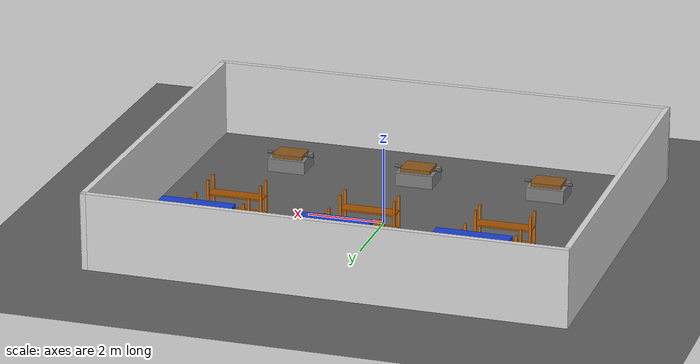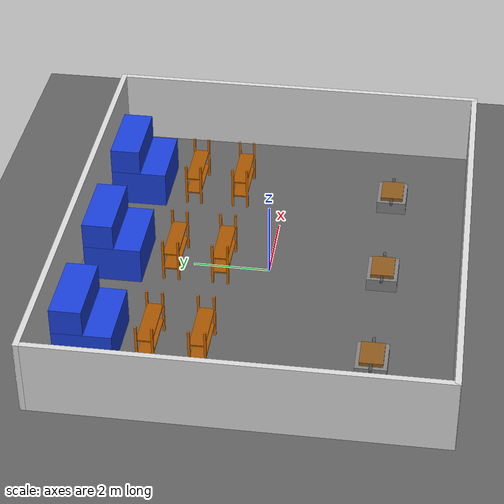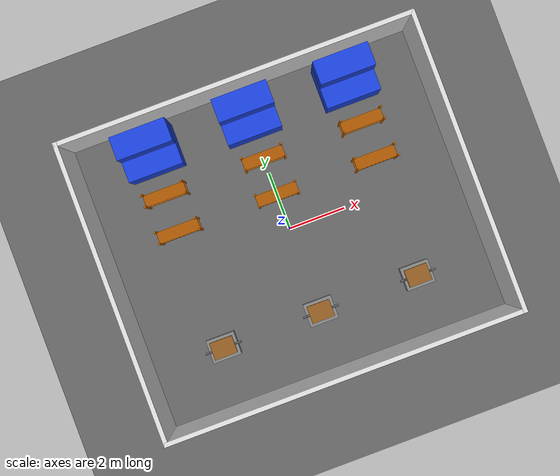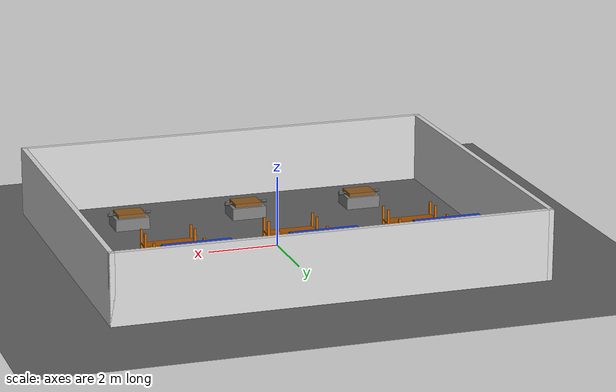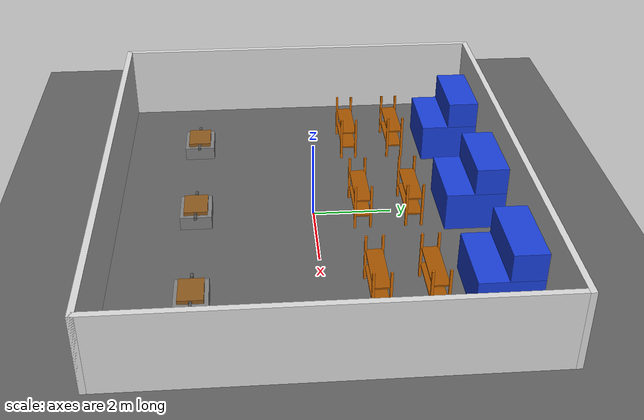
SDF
<?xml version="1.0"?>
<sdf version="1.8">
  <world name="warehouse">

    <!-- Required Ignition Fortress system plugins -->
    <plugin filename="ignition-gazebo-physics-system"
            name="ignition::gazebo::systems::Physics"/>
    <plugin filename="ignition-gazebo-user-commands-system"
            name="ignition::gazebo::systems::UserCommands"/>
    <plugin filename="ignition-gazebo-scene-broadcaster-system"
            name="ignition::gazebo::systems::SceneBroadcaster"/>
    <!-- Sensor system for gpu_lidar (uses Mesa software GL via LIBGL_ALWAYS_SOFTWARE=1) -->
    <plugin filename="ignition-gazebo-sensors-system"
            name="ignition::gazebo::systems::Sensors">
      <render_engine>ogre2</render_engine>
    </plugin>

    <light type="directional" name="sun">
      <cast_shadows>true</cast_shadows>
      <pose>0 0 10 0 0 0</pose>
      <diffuse>0.8 0.8 0.8 1</diffuse>
      <specular>0.2 0.2 0.2 1</specular>
      <direction>-0.5 0.1 -0.9</direction>
    </light>

    <!-- ═══════════════════════════════ GROUND ══════════════════════════════ -->
    <model name="ground_plane">
      <static>true</static>
      <link name="link">
        <collision name="collision">
          <geometry>
            <plane><normal>0 0 1</normal><size>20 20</size></plane>
          </geometry>
        </collision>
        <visual name="visual">
          <geometry>
            <plane><normal>0 0 1</normal><size>20 20</size></plane>
          </geometry>
          <material>
            <ambient>0.33 0.33 0.33 1</ambient>
            <diffuse>0.38 0.38 0.38 1</diffuse>
          </material>
        </visual>
      </link>
    </model>

    <!-- ═══════════════════════════════ WALLS ═══════════════════════════════ -->
    <!-- Interior: 12 m (x) × 10 m (y), centred at origin.                   -->
    <!-- Walls: 0.15 m thick, 2.0 m tall.                                     -->

    <model name="wall_north">
      <static>true</static>
      <pose>0 5.075 1.0 0 0 0</pose>
      <link name="link">
        <collision name="collision">
          <geometry><box><size>12.3 0.15 2.0</size></box></geometry>
        </collision>
        <visual name="visual">
          <geometry><box><size>12.3 0.15 2.0</size></box></geometry>
          <material><ambient>0.75 0.75 0.75 1</ambient><diffuse>0.85 0.85 0.85 1</diffuse></material>
        </visual>
      </link>
    </model>

    <model name="wall_south">
      <static>true</static>
      <pose>0 -5.075 1.0 0 0 0</pose>
      <link name="link">
        <collision name="collision">
          <geometry><box><size>12.3 0.15 2.0</size></box></geometry>
        </collision>
        <visual name="visual">
          <geometry><box><size>12.3 0.15 2.0</size></box></geometry>
          <material><ambient>0.75 0.75 0.75 1</ambient><diffuse>0.85 0.85 0.85 1</diffuse></material>
        </visual>
      </link>
    </model>

    <model name="wall_east">
      <static>true</static>
      <pose>6.075 0 1.0 0 0 0</pose>
      <link name="link">
        <collision name="collision">
          <geometry><box><size>0.15 10.3 2.0</size></box></geometry>
        </collision>
        <visual name="visual">
          <geometry><box><size>0.15 10.3 2.0</size></box></geometry>
          <material><ambient>0.75 0.75 0.75 1</ambient><diffuse>0.85 0.85 0.85 1</diffuse></material>
        </visual>
      </link>
    </model>

    <model name="wall_west">
      <static>true</static>
      <pose>-6.075 0 1.0 0 0 0</pose>
      <link name="link">
        <collision name="collision">
          <geometry><box><size>0.15 10.3 2.0</size></box></geometry>
        </collision>
        <visual name="visual">
          <geometry><box><size>0.15 10.3 2.0</size></box></geometry>
          <material><ambient>0.75 0.75 0.75 1</ambient><diffuse>0.85 0.85 0.85 1</diffuse></material>
        </visual>
      </link>
    </model>

    <!-- ══════════════ ZONA 1: CAMIONES / TRUCKS (north, y=4.0) ════════════ -->
    <!-- 3 docking trucks against the north wall, spaced 3.5 m apart.         -->
    <!-- Body 1.9×1.5×1.0 m, cab 1.9×0.8×0.7 m on top (blue).               -->
    <!-- Loading-dock face points south (−y), toward the robot.               -->

    <model name="truck_1">
      <static>true</static>
      <pose>-3.5 4.0 0 0 0 0</pose>
      <link name="link">
        <collision name="body">
          <pose>0 0 0.50 0 0 0</pose>
          <geometry><box><size>1.90 1.50 1.00</size></box></geometry>
        </collision>
        <visual name="body">
          <pose>0 0 0.50 0 0 0</pose>
          <geometry><box><size>1.90 1.50 1.00</size></box></geometry>
          <material><ambient>0.08 0.18 0.70 1</ambient><diffuse>0.10 0.25 0.85 1</diffuse></material>
        </visual>
        <collision name="cab">
          <pose>0 0.35 1.35 0 0 0</pose>
          <geometry><box><size>1.90 0.80 0.70</size></box></geometry>
        </collision>
        <visual name="cab">
          <pose>0 0.35 1.35 0 0 0</pose>
          <geometry><box><size>1.90 0.80 0.70</size></box></geometry>
          <material><ambient>0.08 0.18 0.70 1</ambient><diffuse>0.10 0.25 0.85 1</diffuse></material>
        </visual>
      </link>
    </model>

    <model name="truck_2">
      <static>true</static>
      <pose>0 4.0 0 0 0 0</pose>
      <link name="link">
        <collision name="body">
          <pose>0 0 0.50 0 0 0</pose>
          <geometry><box><size>1.90 1.50 1.00</size></box></geometry>
        </collision>
        <visual name="body">
          <pose>0 0 0.50 0 0 0</pose>
          <geometry><box><size>1.90 1.50 1.00</size></box></geometry>
          <material><ambient>0.08 0.18 0.70 1</ambient><diffuse>0.10 0.25 0.85 1</diffuse></material>
        </visual>
        <collision name="cab">
          <pose>0 0.35 1.35 0 0 0</pose>
          <geometry><box><size>1.90 0.80 0.70</size></box></geometry>
        </collision>
        <visual name="cab">
          <pose>0 0.35 1.35 0 0 0</pose>
          <geometry><box><size>1.90 0.80 0.70</size></box></geometry>
          <material><ambient>0.08 0.18 0.70 1</ambient><diffuse>0.10 0.25 0.85 1</diffuse></material>
        </visual>
      </link>
    </model>

    <model name="truck_3">
      <static>true</static>
      <pose>3.5 4.0 0 0 0 0</pose>
      <link name="link">
        <collision name="body">
          <pose>0 0 0.50 0 0 0</pose>
          <geometry><box><size>1.90 1.50 1.00</size></box></geometry>
        </collision>
        <visual name="body">
          <pose>0 0 0.50 0 0 0</pose>
          <geometry><box><size>1.90 1.50 1.00</size></box></geometry>
          <material><ambient>0.08 0.18 0.70 1</ambient><diffuse>0.10 0.25 0.85 1</diffuse></material>
        </visual>
        <collision name="cab">
          <pose>0 0.35 1.35 0 0 0</pose>
          <geometry><box><size>1.90 0.80 0.70</size></box></geometry>
        </collision>
        <visual name="cab">
          <pose>0 0.35 1.35 0 0 0</pose>
          <geometry><box><size>1.90 0.80 0.70</size></box></geometry>
          <material><ambient>0.08 0.18 0.70 1</ambient><diffuse>0.10 0.25 0.85 1</diffuse></material>
        </visual>
      </link>
    </model>

    <!-- ═══════════════════ ZONA 2: RACKS (central, y=2.5 and y=1.2) ═══════ -->
    <!-- 6 racks: 2 rows × 3 cols.  Row A: y=2.5, Row B: y=1.2.              -->
    <!-- x positions: −3.5, 0, +3.5.  Aisle between rows ≈ 1.1 m.            -->
    <!-- Each rack: 4 vertical posts (0.06×0.06×1.2) at corners ±(0.70,0.20) -->
    <!-- + 2 shelf panels (1.44×0.40×0.04) at z=0.35 and z=0.80.             -->
    <!-- Orange posts / darker-orange shelves.                                 -->
    <!-- LiDAR at z≈0.13 m will see the posts (floor-to-1.2 m).              -->

    <!-- rack_a1: x=−3.5, y=2.5 -->
    <model name="rack_a1">
      <static>true</static>
      <pose>-3.5 2.5 0 0 0 0</pose>
      <link name="link">
        <collision name="pfl"><pose>-0.70 -0.20 0.60 0 0 0</pose><geometry><box><size>0.06 0.06 1.20</size></box></geometry></collision>
        <visual    name="pfl"><pose>-0.70 -0.20 0.60 0 0 0</pose><geometry><box><size>0.06 0.06 1.20</size></box></geometry><material><ambient>0.70 0.35 0.00 1</ambient><diffuse>0.80 0.40 0.00 1</diffuse></material></visual>
        <collision name="pfr"><pose> 0.70 -0.20 0.60 0 0 0</pose><geometry><box><size>0.06 0.06 1.20</size></box></geometry></collision>
        <visual    name="pfr"><pose> 0.70 -0.20 0.60 0 0 0</pose><geometry><box><size>0.06 0.06 1.20</size></box></geometry><material><ambient>0.70 0.35 0.00 1</ambient><diffuse>0.80 0.40 0.00 1</diffuse></material></visual>
        <collision name="pbl"><pose>-0.70  0.20 0.60 0 0 0</pose><geometry><box><size>0.06 0.06 1.20</size></box></geometry></collision>
        <visual    name="pbl"><pose>-0.70  0.20 0.60 0 0 0</pose><geometry><box><size>0.06 0.06 1.20</size></box></geometry><material><ambient>0.70 0.35 0.00 1</ambient><diffuse>0.80 0.40 0.00 1</diffuse></material></visual>
        <collision name="pbr"><pose> 0.70  0.20 0.60 0 0 0</pose><geometry><box><size>0.06 0.06 1.20</size></box></geometry></collision>
        <visual    name="pbr"><pose> 0.70  0.20 0.60 0 0 0</pose><geometry><box><size>0.06 0.06 1.20</size></box></geometry><material><ambient>0.70 0.35 0.00 1</ambient><diffuse>0.80 0.40 0.00 1</diffuse></material></visual>
        <collision name="s1"><pose>0 0 0.35 0 0 0</pose><geometry><box><size>1.44 0.40 0.04</size></box></geometry></collision>
        <visual    name="s1"><pose>0 0 0.35 0 0 0</pose><geometry><box><size>1.44 0.40 0.04</size></box></geometry><material><ambient>0.55 0.28 0.00 1</ambient><diffuse>0.65 0.33 0.00 1</diffuse></material></visual>
        <collision name="s2"><pose>0 0 0.80 0 0 0</pose><geometry><box><size>1.44 0.40 0.04</size></box></geometry></collision>
        <visual    name="s2"><pose>0 0 0.80 0 0 0</pose><geometry><box><size>1.44 0.40 0.04</size></box></geometry><material><ambient>0.55 0.28 0.00 1</ambient><diffuse>0.65 0.33 0.00 1</diffuse></material></visual>
      </link>
    </model>

    <!-- rack_a2: x=0, y=2.5 -->
    <model name="rack_a2">
      <static>true</static>
      <pose>0 2.5 0 0 0 0</pose>
      <link name="link">
        <collision name="pfl"><pose>-0.70 -0.20 0.60 0 0 0</pose><geometry><box><size>0.06 0.06 1.20</size></box></geometry></collision>
        <visual    name="pfl"><pose>-0.70 -0.20 0.60 0 0 0</pose><geometry><box><size>0.06 0.06 1.20</size></box></geometry><material><ambient>0.70 0.35 0.00 1</ambient><diffuse>0.80 0.40 0.00 1</diffuse></material></visual>
        <collision name="pfr"><pose> 0.70 -0.20 0.60 0 0 0</pose><geometry><box><size>0.06 0.06 1.20</size></box></geometry></collision>
        <visual    name="pfr"><pose> 0.70 -0.20 0.60 0 0 0</pose><geometry><box><size>0.06 0.06 1.20</size></box></geometry><material><ambient>0.70 0.35 0.00 1</ambient><diffuse>0.80 0.40 0.00 1</diffuse></material></visual>
        <collision name="pbl"><pose>-0.70  0.20 0.60 0 0 0</pose><geometry><box><size>0.06 0.06 1.20</size></box></geometry></collision>
        <visual    name="pbl"><pose>-0.70  0.20 0.60 0 0 0</pose><geometry><box><size>0.06 0.06 1.20</size></box></geometry><material><ambient>0.70 0.35 0.00 1</ambient><diffuse>0.80 0.40 0.00 1</diffuse></material></visual>
        <collision name="pbr"><pose> 0.70  0.20 0.60 0 0 0</pose><geometry><box><size>0.06 0.06 1.20</size></box></geometry></collision>
        <visual    name="pbr"><pose> 0.70  0.20 0.60 0 0 0</pose><geometry><box><size>0.06 0.06 1.20</size></box></geometry><material><ambient>0.70 0.35 0.00 1</ambient><diffuse>0.80 0.40 0.00 1</diffuse></material></visual>
        <collision name="s1"><pose>0 0 0.35 0 0 0</pose><geometry><box><size>1.44 0.40 0.04</size></box></geometry></collision>
        <visual    name="s1"><pose>0 0 0.35 0 0 0</pose><geometry><box><size>1.44 0.40 0.04</size></box></geometry><material><ambient>0.55 0.28 0.00 1</ambient><diffuse>0.65 0.33 0.00 1</diffuse></material></visual>
        <collision name="s2"><pose>0 0 0.80 0 0 0</pose><geometry><box><size>1.44 0.40 0.04</size></box></geometry></collision>
        <visual    name="s2"><pose>0 0 0.80 0 0 0</pose><geometry><box><size>1.44 0.40 0.04</size></box></geometry><material><ambient>0.55 0.28 0.00 1</ambient><diffuse>0.65 0.33 0.00 1</diffuse></material></visual>
      </link>
    </model>

    <!-- rack_a3: x=+3.5, y=2.5 -->
    <model name="rack_a3">
      <static>true</static>
      <pose>3.5 2.5 0 0 0 0</pose>
      <link name="link">
        <collision name="pfl"><pose>-0.70 -0.20 0.60 0 0 0</pose><geometry><box><size>0.06 0.06 1.20</size></box></geometry></collision>
        <visual    name="pfl"><pose>-0.70 -0.20 0.60 0 0 0</pose><geometry><box><size>0.06 0.06 1.20</size></box></geometry><material><ambient>0.70 0.35 0.00 1</ambient><diffuse>0.80 0.40 0.00 1</diffuse></material></visual>
        <collision name="pfr"><pose> 0.70 -0.20 0.60 0 0 0</pose><geometry><box><size>0.06 0.06 1.20</size></box></geometry></collision>
        <visual    name="pfr"><pose> 0.70 -0.20 0.60 0 0 0</pose><geometry><box><size>0.06 0.06 1.20</size></box></geometry><material><ambient>0.70 0.35 0.00 1</ambient><diffuse>0.80 0.40 0.00 1</diffuse></material></visual>
        <collision name="pbl"><pose>-0.70  0.20 0.60 0 0 0</pose><geometry><box><size>0.06 0.06 1.20</size></box></geometry></collision>
        <visual    name="pbl"><pose>-0.70  0.20 0.60 0 0 0</pose><geometry><box><size>0.06 0.06 1.20</size></box></geometry><material><ambient>0.70 0.35 0.00 1</ambient><diffuse>0.80 0.40 0.00 1</diffuse></material></visual>
        <collision name="pbr"><pose> 0.70  0.20 0.60 0 0 0</pose><geometry><box><size>0.06 0.06 1.20</size></box></geometry></collision>
        <visual    name="pbr"><pose> 0.70  0.20 0.60 0 0 0</pose><geometry><box><size>0.06 0.06 1.20</size></box></geometry><material><ambient>0.70 0.35 0.00 1</ambient><diffuse>0.80 0.40 0.00 1</diffuse></material></visual>
        <collision name="s1"><pose>0 0 0.35 0 0 0</pose><geometry><box><size>1.44 0.40 0.04</size></box></geometry></collision>
        <visual    name="s1"><pose>0 0 0.35 0 0 0</pose><geometry><box><size>1.44 0.40 0.04</size></box></geometry><material><ambient>0.55 0.28 0.00 1</ambient><diffuse>0.65 0.33 0.00 1</diffuse></material></visual>
        <collision name="s2"><pose>0 0 0.80 0 0 0</pose><geometry><box><size>1.44 0.40 0.04</size></box></geometry></collision>
        <visual    name="s2"><pose>0 0 0.80 0 0 0</pose><geometry><box><size>1.44 0.40 0.04</size></box></geometry><material><ambient>0.55 0.28 0.00 1</ambient><diffuse>0.65 0.33 0.00 1</diffuse></material></visual>
      </link>
    </model>

    <!-- rack_b1: x=−3.5, y=1.2 -->
    <model name="rack_b1">
      <static>true</static>
      <pose>-3.5 1.2 0 0 0 0</pose>
      <link name="link">
        <collision name="pfl"><pose>-0.70 -0.20 0.60 0 0 0</pose><geometry><box><size>0.06 0.06 1.20</size></box></geometry></collision>
        <visual    name="pfl"><pose>-0.70 -0.20 0.60 0 0 0</pose><geometry><box><size>0.06 0.06 1.20</size></box></geometry><material><ambient>0.70 0.35 0.00 1</ambient><diffuse>0.80 0.40 0.00 1</diffuse></material></visual>
        <collision name="pfr"><pose> 0.70 -0.20 0.60 0 0 0</pose><geometry><box><size>0.06 0.06 1.20</size></box></geometry></collision>
        <visual    name="pfr"><pose> 0.70 -0.20 0.60 0 0 0</pose><geometry><box><size>0.06 0.06 1.20</size></box></geometry><material><ambient>0.70 0.35 0.00 1</ambient><diffuse>0.80 0.40 0.00 1</diffuse></material></visual>
        <collision name="pbl"><pose>-0.70  0.20 0.60 0 0 0</pose><geometry><box><size>0.06 0.06 1.20</size></box></geometry></collision>
        <visual    name="pbl"><pose>-0.70  0.20 0.60 0 0 0</pose><geometry><box><size>0.06 0.06 1.20</size></box></geometry><material><ambient>0.70 0.35 0.00 1</ambient><diffuse>0.80 0.40 0.00 1</diffuse></material></visual>
        <collision name="pbr"><pose> 0.70  0.20 0.60 0 0 0</pose><geometry><box><size>0.06 0.06 1.20</size></box></geometry></collision>
        <visual    name="pbr"><pose> 0.70  0.20 0.60 0 0 0</pose><geometry><box><size>0.06 0.06 1.20</size></box></geometry><material><ambient>0.70 0.35 0.00 1</ambient><diffuse>0.80 0.40 0.00 1</diffuse></material></visual>
        <collision name="s1"><pose>0 0 0.35 0 0 0</pose><geometry><box><size>1.44 0.40 0.04</size></box></geometry></collision>
        <visual    name="s1"><pose>0 0 0.35 0 0 0</pose><geometry><box><size>1.44 0.40 0.04</size></box></geometry><material><ambient>0.55 0.28 0.00 1</ambient><diffuse>0.65 0.33 0.00 1</diffuse></material></visual>
        <collision name="s2"><pose>0 0 0.80 0 0 0</pose><geometry><box><size>1.44 0.40 0.04</size></box></geometry></collision>
        <visual    name="s2"><pose>0 0 0.80 0 0 0</pose><geometry><box><size>1.44 0.40 0.04</size></box></geometry><material><ambient>0.55 0.28 0.00 1</ambient><diffuse>0.65 0.33 0.00 1</diffuse></material></visual>
      </link>
    </model>

    <!-- rack_b2: x=0, y=1.2 -->
    <model name="rack_b2">
      <static>true</static>
      <pose>0 1.2 0 0 0 0</pose>
      <link name="link">
        <collision name="pfl"><pose>-0.70 -0.20 0.60 0 0 0</pose><geometry><box><size>0.06 0.06 1.20</size></box></geometry></collision>
        <visual    name="pfl"><pose>-0.70 -0.20 0.60 0 0 0</pose><geometry><box><size>0.06 0.06 1.20</size></box></geometry><material><ambient>0.70 0.35 0.00 1</ambient><diffuse>0.80 0.40 0.00 1</diffuse></material></visual>
        <collision name="pfr"><pose> 0.70 -0.20 0.60 0 0 0</pose><geometry><box><size>0.06 0.06 1.20</size></box></geometry></collision>
        <visual    name="pfr"><pose> 0.70 -0.20 0.60 0 0 0</pose><geometry><box><size>0.06 0.06 1.20</size></box></geometry><material><ambient>0.70 0.35 0.00 1</ambient><diffuse>0.80 0.40 0.00 1</diffuse></material></visual>
        <collision name="pbl"><pose>-0.70  0.20 0.60 0 0 0</pose><geometry><box><size>0.06 0.06 1.20</size></box></geometry></collision>
        <visual    name="pbl"><pose>-0.70  0.20 0.60 0 0 0</pose><geometry><box><size>0.06 0.06 1.20</size></box></geometry><material><ambient>0.70 0.35 0.00 1</ambient><diffuse>0.80 0.40 0.00 1</diffuse></material></visual>
        <collision name="pbr"><pose> 0.70  0.20 0.60 0 0 0</pose><geometry><box><size>0.06 0.06 1.20</size></box></geometry></collision>
        <visual    name="pbr"><pose> 0.70  0.20 0.60 0 0 0</pose><geometry><box><size>0.06 0.06 1.20</size></box></geometry><material><ambient>0.70 0.35 0.00 1</ambient><diffuse>0.80 0.40 0.00 1</diffuse></material></visual>
        <collision name="s1"><pose>0 0 0.35 0 0 0</pose><geometry><box><size>1.44 0.40 0.04</size></box></geometry></collision>
        <visual    name="s1"><pose>0 0 0.35 0 0 0</pose><geometry><box><size>1.44 0.40 0.04</size></box></geometry><material><ambient>0.55 0.28 0.00 1</ambient><diffuse>0.65 0.33 0.00 1</diffuse></material></visual>
        <collision name="s2"><pose>0 0 0.80 0 0 0</pose><geometry><box><size>1.44 0.40 0.04</size></box></geometry></collision>
        <visual    name="s2"><pose>0 0 0.80 0 0 0</pose><geometry><box><size>1.44 0.40 0.04</size></box></geometry><material><ambient>0.55 0.28 0.00 1</ambient><diffuse>0.65 0.33 0.00 1</diffuse></material></visual>
      </link>
    </model>

    <!-- rack_b3: x=+3.5, y=1.2 -->
    <model name="rack_b3">
      <static>true</static>
      <pose>3.5 1.2 0 0 0 0</pose>
      <link name="link">
        <collision name="pfl"><pose>-0.70 -0.20 0.60 0 0 0</pose><geometry><box><size>0.06 0.06 1.20</size></box></geometry></collision>
        <visual    name="pfl"><pose>-0.70 -0.20 0.60 0 0 0</pose><geometry><box><size>0.06 0.06 1.20</size></box></geometry><material><ambient>0.70 0.35 0.00 1</ambient><diffuse>0.80 0.40 0.00 1</diffuse></material></visual>
        <collision name="pfr"><pose> 0.70 -0.20 0.60 0 0 0</pose><geometry><box><size>0.06 0.06 1.20</size></box></geometry></collision>
        <visual    name="pfr"><pose> 0.70 -0.20 0.60 0 0 0</pose><geometry><box><size>0.06 0.06 1.20</size></box></geometry><material><ambient>0.70 0.35 0.00 1</ambient><diffuse>0.80 0.40 0.00 1</diffuse></material></visual>
        <collision name="pbl"><pose>-0.70  0.20 0.60 0 0 0</pose><geometry><box><size>0.06 0.06 1.20</size></box></geometry></collision>
        <visual    name="pbl"><pose>-0.70  0.20 0.60 0 0 0</pose><geometry><box><size>0.06 0.06 1.20</size></box></geometry><material><ambient>0.70 0.35 0.00 1</ambient><diffuse>0.80 0.40 0.00 1</diffuse></material></visual>
        <collision name="pbr"><pose> 0.70  0.20 0.60 0 0 0</pose><geometry><box><size>0.06 0.06 1.20</size></box></geometry></collision>
        <visual    name="pbr"><pose> 0.70  0.20 0.60 0 0 0</pose><geometry><box><size>0.06 0.06 1.20</size></box></geometry><material><ambient>0.70 0.35 0.00 1</ambient><diffuse>0.80 0.40 0.00 1</diffuse></material></visual>
        <collision name="s1"><pose>0 0 0.35 0 0 0</pose><geometry><box><size>1.44 0.40 0.04</size></box></geometry></collision>
        <visual    name="s1"><pose>0 0 0.35 0 0 0</pose><geometry><box><size>1.44 0.40 0.04</size></box></geometry><material><ambient>0.55 0.28 0.00 1</ambient><diffuse>0.65 0.33 0.00 1</diffuse></material></visual>
        <collision name="s2"><pose>0 0 0.80 0 0 0</pose><geometry><box><size>1.44 0.40 0.04</size></box></geometry></collision>
        <visual    name="s2"><pose>0 0 0.80 0 0 0</pose><geometry><box><size>1.44 0.40 0.04</size></box></geometry><material><ambient>0.55 0.28 0.00 1</ambient><diffuse>0.65 0.33 0.00 1</diffuse></material></visual>
      </link>
    </model>

    <!-- ═══════════════════ ZONA 3: CONVEYORS / ROLLERS (south, y=−3.0) ════ -->
    <!-- 3 conveyor tables at x={−3.5, 0, +3.5}.                             -->
    <!-- Base platform: 1.0×0.8×0.35 m (gray).                               -->
    <!-- 5 cylindrical rollers on top: r=0.04, l=0.70, horizontal along x.   -->
    <!-- Rollers run in x-direction; pitch=π/2 to lay the cylinder flat.      -->

    <model name="conveyor_1">
      <static>true</static>
      <pose>-3.5 -3.0 0 0 0 0</pose>
      <link name="link">
        <!-- Base -->
        <collision name="base"><pose>0 0 0.175 0 0 0</pose><geometry><box><size>1.00 0.80 0.35</size></box></geometry></collision>
        <visual    name="base"><pose>0 0 0.175 0 0 0</pose><geometry><box><size>1.00 0.80 0.35</size></box></geometry><material><ambient>0.40 0.40 0.40 1</ambient><diffuse>0.50 0.50 0.50 1</diffuse></material></visual>
        <!-- 5 rollers at y={−0.28,−0.14,0,0.14,0.28}, z=0.39 -->
        <collision name="r0"><pose>-0.28 0 0.39 0 1.5708 0</pose><geometry><cylinder><radius>0.04</radius><length>0.70</length></cylinder></geometry></collision>
        <visual    name="r0"><pose>-0.28 0 0.39 0 1.5708 0</pose><geometry><cylinder><radius>0.04</radius><length>0.70</length></cylinder></geometry><material><ambient>0.30 0.30 0.30 1</ambient><diffuse>0.35 0.35 0.35 1</diffuse></material></visual>
        <collision name="r1"><pose>-0.14 0 0.39 0 1.5708 0</pose><geometry><cylinder><radius>0.04</radius><length>0.70</length></cylinder></geometry></collision>
        <visual    name="r1"><pose>-0.14 0 0.39 0 1.5708 0</pose><geometry><cylinder><radius>0.04</radius><length>0.70</length></cylinder></geometry><material><ambient>0.30 0.30 0.30 1</ambient><diffuse>0.35 0.35 0.35 1</diffuse></material></visual>
        <collision name="r2"><pose> 0.00 0 0.39 0 1.5708 0</pose><geometry><cylinder><radius>0.04</radius><length>0.70</length></cylinder></geometry></collision>
        <visual    name="r2"><pose> 0.00 0 0.39 0 1.5708 0</pose><geometry><cylinder><radius>0.04</radius><length>0.70</length></cylinder></geometry><material><ambient>0.30 0.30 0.30 1</ambient><diffuse>0.35 0.35 0.35 1</diffuse></material></visual>
        <collision name="r3"><pose> 0.14 0 0.39 0 1.5708 0</pose><geometry><cylinder><radius>0.04</radius><length>0.70</length></cylinder></geometry></collision>
        <visual    name="r3"><pose> 0.14 0 0.39 0 1.5708 0</pose><geometry><cylinder><radius>0.04</radius><length>0.70</length></cylinder></geometry><material><ambient>0.30 0.30 0.30 1</ambient><diffuse>0.35 0.35 0.35 1</diffuse></material></visual>
        <collision name="r4"><pose> 0.28 0 0.39 0 1.5708 0</pose><geometry><cylinder><radius>0.04</radius><length>0.70</length></cylinder></geometry></collision>
        <visual    name="r4"><pose> 0.28 0 0.39 0 1.5708 0</pose><geometry><cylinder><radius>0.04</radius><length>0.70</length></cylinder></geometry><material><ambient>0.30 0.30 0.30 1</ambient><diffuse>0.35 0.35 0.35 1</diffuse></material></visual>
      </link>
    </model>

    <model name="conveyor_2">
      <static>true</static>
      <pose>0 -3.0 0 0 0 0</pose>
      <link name="link">
        <collision name="base"><pose>0 0 0.175 0 0 0</pose><geometry><box><size>1.00 0.80 0.35</size></box></geometry></collision>
        <visual    name="base"><pose>0 0 0.175 0 0 0</pose><geometry><box><size>1.00 0.80 0.35</size></box></geometry><material><ambient>0.40 0.40 0.40 1</ambient><diffuse>0.50 0.50 0.50 1</diffuse></material></visual>
        <collision name="r0"><pose>-0.28 0 0.39 0 1.5708 0</pose><geometry><cylinder><radius>0.04</radius><length>0.70</length></cylinder></geometry></collision>
        <visual    name="r0"><pose>-0.28 0 0.39 0 1.5708 0</pose><geometry><cylinder><radius>0.04</radius><length>0.70</length></cylinder></geometry><material><ambient>0.30 0.30 0.30 1</ambient><diffuse>0.35 0.35 0.35 1</diffuse></material></visual>
        <collision name="r1"><pose>-0.14 0 0.39 0 1.5708 0</pose><geometry><cylinder><radius>0.04</radius><length>0.70</length></cylinder></geometry></collision>
        <visual    name="r1"><pose>-0.14 0 0.39 0 1.5708 0</pose><geometry><cylinder><radius>0.04</radius><length>0.70</length></cylinder></geometry><material><ambient>0.30 0.30 0.30 1</ambient><diffuse>0.35 0.35 0.35 1</diffuse></material></visual>
        <collision name="r2"><pose> 0.00 0 0.39 0 1.5708 0</pose><geometry><cylinder><radius>0.04</radius><length>0.70</length></cylinder></geometry></collision>
        <visual    name="r2"><pose> 0.00 0 0.39 0 1.5708 0</pose><geometry><cylinder><radius>0.04</radius><length>0.70</length></cylinder></geometry><material><ambient>0.30 0.30 0.30 1</ambient><diffuse>0.35 0.35 0.35 1</diffuse></material></visual>
        <collision name="r3"><pose> 0.14 0 0.39 0 1.5708 0</pose><geometry><cylinder><radius>0.04</radius><length>0.70</length></cylinder></geometry></collision>
        <visual    name="r3"><pose> 0.14 0 0.39 0 1.5708 0</pose><geometry><cylinder><radius>0.04</radius><length>0.70</length></cylinder></geometry><material><ambient>0.30 0.30 0.30 1</ambient><diffuse>0.35 0.35 0.35 1</diffuse></material></visual>
        <collision name="r4"><pose> 0.28 0 0.39 0 1.5708 0</pose><geometry><cylinder><radius>0.04</radius><length>0.70</length></cylinder></geometry></collision>
        <visual    name="r4"><pose> 0.28 0 0.39 0 1.5708 0</pose><geometry><cylinder><radius>0.04</radius><length>0.70</length></cylinder></geometry><material><ambient>0.30 0.30 0.30 1</ambient><diffuse>0.35 0.35 0.35 1</diffuse></material></visual>
      </link>
    </model>

    <model name="conveyor_3">
      <static>true</static>
      <pose>3.5 -3.0 0 0 0 0</pose>
      <link name="link">
        <collision name="base"><pose>0 0 0.175 0 0 0</pose><geometry><box><size>1.00 0.80 0.35</size></box></geometry></collision>
        <visual    name="base"><pose>0 0 0.175 0 0 0</pose><geometry><box><size>1.00 0.80 0.35</size></box></geometry><material><ambient>0.40 0.40 0.40 1</ambient><diffuse>0.50 0.50 0.50 1</diffuse></material></visual>
        <collision name="r0"><pose>-0.28 0 0.39 0 1.5708 0</pose><geometry><cylinder><radius>0.04</radius><length>0.70</length></cylinder></geometry></collision>
        <visual    name="r0"><pose>-0.28 0 0.39 0 1.5708 0</pose><geometry><cylinder><radius>0.04</radius><length>0.70</length></cylinder></geometry><material><ambient>0.30 0.30 0.30 1</ambient><diffuse>0.35 0.35 0.35 1</diffuse></material></visual>
        <collision name="r1"><pose>-0.14 0 0.39 0 1.5708 0</pose><geometry><cylinder><radius>0.04</radius><length>0.70</length></cylinder></geometry></collision>
        <visual    name="r1"><pose>-0.14 0 0.39 0 1.5708 0</pose><geometry><cylinder><radius>0.04</radius><length>0.70</length></cylinder></geometry><material><ambient>0.30 0.30 0.30 1</ambient><diffuse>0.35 0.35 0.35 1</diffuse></material></visual>
        <collision name="r2"><pose> 0.00 0 0.39 0 1.5708 0</pose><geometry><cylinder><radius>0.04</radius><length>0.70</length></cylinder></geometry></collision>
        <visual    name="r2"><pose> 0.00 0 0.39 0 1.5708 0</pose><geometry><cylinder><radius>0.04</radius><length>0.70</length></cylinder></geometry><material><ambient>0.30 0.30 0.30 1</ambient><diffuse>0.35 0.35 0.35 1</diffuse></material></visual>
        <collision name="r3"><pose> 0.14 0 0.39 0 1.5708 0</pose><geometry><cylinder><radius>0.04</radius><length>0.70</length></cylinder></geometry></collision>
        <visual    name="r3"><pose> 0.14 0 0.39 0 1.5708 0</pose><geometry><cylinder><radius>0.04</radius><length>0.70</length></cylinder></geometry><material><ambient>0.30 0.30 0.30 1</ambient><diffuse>0.35 0.35 0.35 1</diffuse></material></visual>
        <collision name="r4"><pose> 0.28 0 0.39 0 1.5708 0</pose><geometry><cylinder><radius>0.04</radius><length>0.70</length></cylinder></geometry></collision>
        <visual    name="r4"><pose> 0.28 0 0.39 0 1.5708 0</pose><geometry><cylinder><radius>0.04</radius><length>0.70</length></cylinder></geometry><material><ambient>0.30 0.30 0.30 1</ambient><diffuse>0.35 0.35 0.35 1</diffuse></material></visual>
      </link>
    </model>

    <!-- ════════════════ PALLETS on conveyors (wood brown) ══════════════════ -->
    <!-- 0.80×0.60×0.10 m, resting on conveyor tops (z = 0.35 + 0.05 = 0.40) -->

    <model name="pallet_1">
      <static>true</static>
      <pose>-3.5 -3.0 0.40 0 0 0</pose>
      <link name="link">
        <collision name="collision">
          <geometry><box><size>0.80 0.60 0.10</size></box></geometry>
        </collision>
        <visual name="visual">
          <geometry><box><size>0.80 0.60 0.10</size></box></geometry>
          <material><ambient>0.45 0.28 0.10 1</ambient><diffuse>0.55 0.35 0.12 1</diffuse></material>
        </visual>
      </link>
    </model>

    <model name="pallet_2">
      <static>true</static>
      <pose>0 -3.0 0.40 0 0 0</pose>
      <link name="link">
        <collision name="collision">
          <geometry><box><size>0.80 0.60 0.10</size></box></geometry>
        </collision>
        <visual name="visual">
          <geometry><box><size>0.80 0.60 0.10</size></box></geometry>
          <material><ambient>0.45 0.28 0.10 1</ambient><diffuse>0.55 0.35 0.12 1</diffuse></material>
        </visual>
      </link>
    </model>

    <model name="pallet_3">
      <static>true</static>
      <pose>3.5 -3.0 0.40 0 0 0</pose>
      <link name="link">
        <collision name="collision">
          <geometry><box><size>0.80 0.60 0.10</size></box></geometry>
        </collision>
        <visual name="visual">
          <geometry><box><size>0.80 0.60 0.10</size></box></geometry>
          <material><ambient>0.45 0.28 0.10 1</ambient><diffuse>0.55 0.35 0.12 1</diffuse></material>
        </visual>
      </link>
    </model>

  </world>
</sdf>
